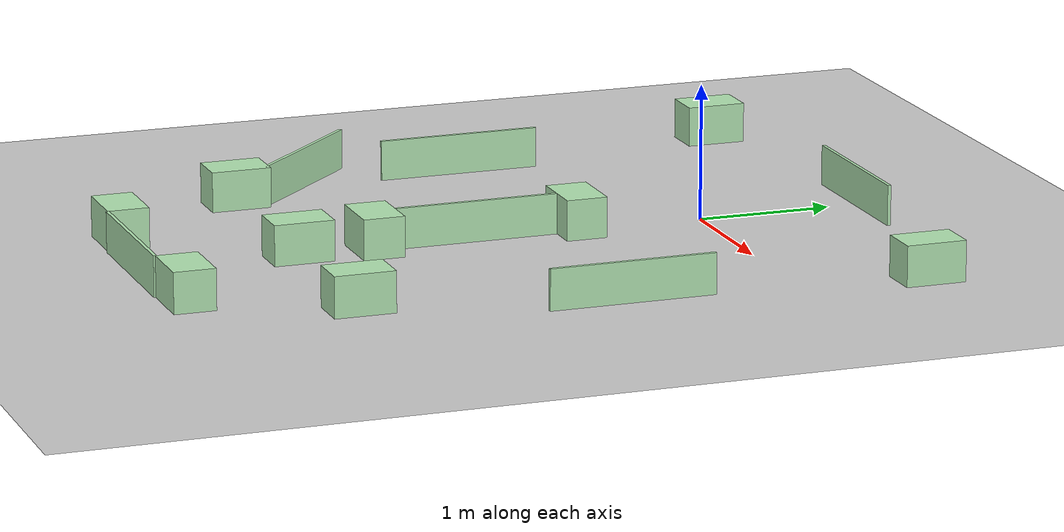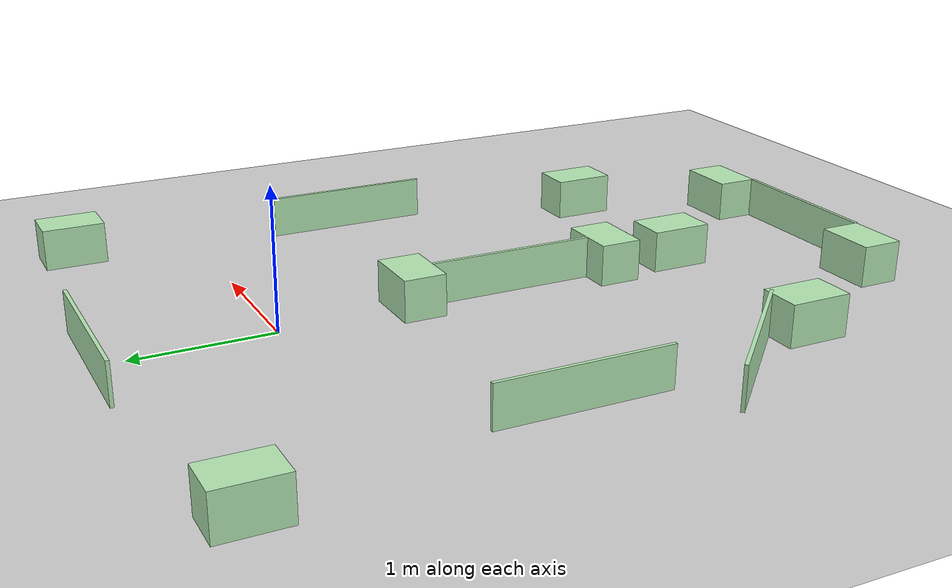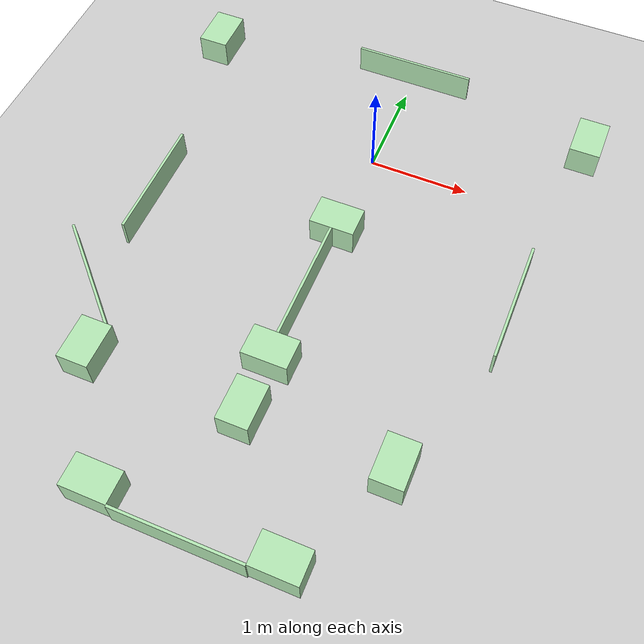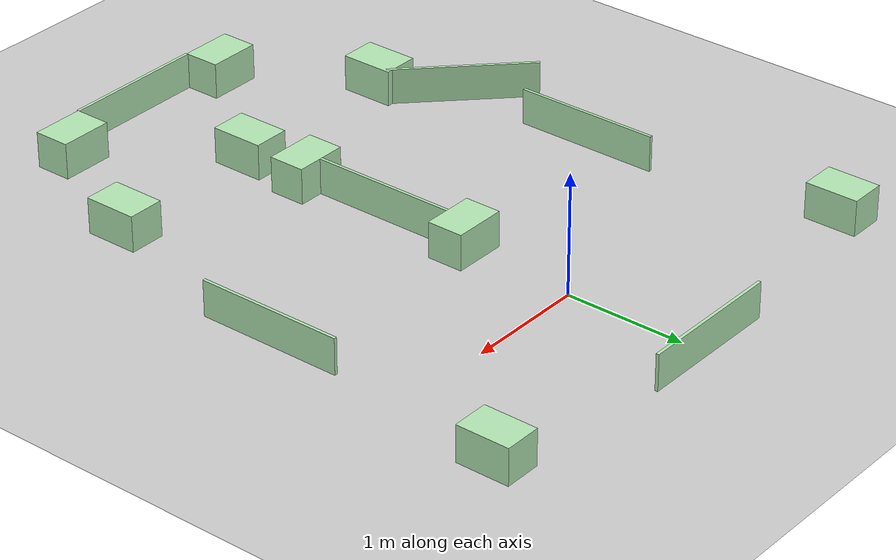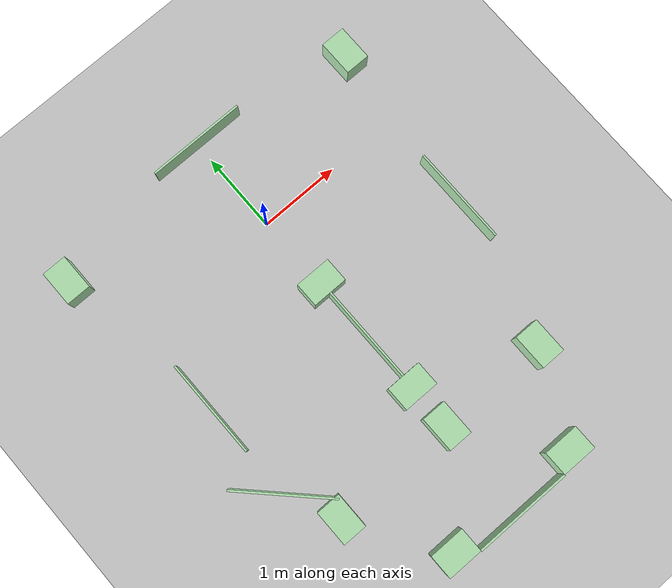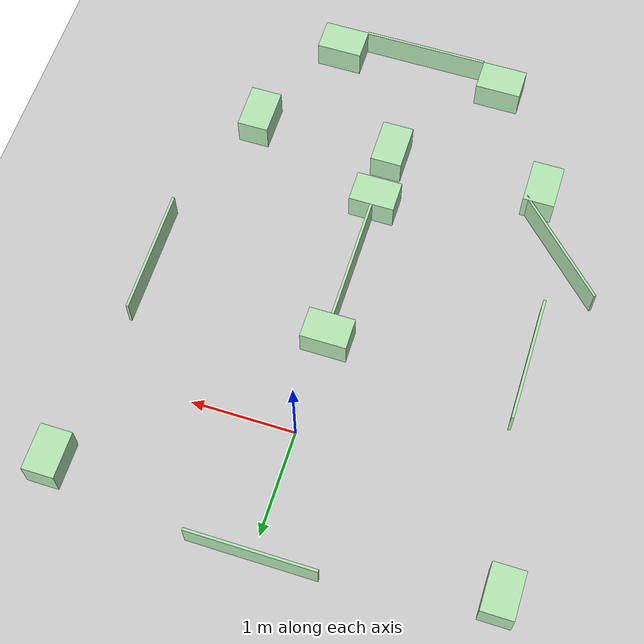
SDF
<?xml version="1.0" ?>
<sdf version="1.4">
  <world name="default">

    <gui fullscreen='0'>
      <camera name='user_camera'>
        <pose frame=''>-12.2963 -0.596448 6.620387 0.000001 0.484000 -0.128791</pose>
        <view_controller>orbit</view_controller>
        <projection_type>perspective</projection_type>
      </camera>
    </gui>

    <scene>
      <ambient>0.5 0.5 0.5 1</ambient>
      <background>0.5 0.5 0.5 1</background>
      <shadows>false</shadows>
    </scene>

    <physics type="ode">
      <gravity>0 0 -9.81</gravity>
      <ode>
        <solver>
          <type>quick</type>
          <iters>50</iters>
          <sor>1.3</sor>
        </solver>
        <constraints>
          <cfm>0.0</cfm>
          <erp>0.2</erp>
          <contact_max_correcting_vel>100.0</contact_max_correcting_vel>
          <contact_surface_layer>0.001</contact_surface_layer>
        </constraints>
      </ode>
      <real_time_update_rate>1000</real_time_update_rate>
      <max_step_size>0.001</max_step_size>
    </physics>

    <include>
      <uri>model://ground_plane</uri>
    </include>

    <include>
      <uri>model://sun</uri>
    </include>

<!--______________________________gazebo world______________________________ -->
    <model name="wall_1">
      <static>true</static>
      <link name="wall_1_link">
        <pose> 0.0 -4.2672  0.15 0 0 1.57079632679</pose>
        <collision name="wall_1_collision">
          <geometry>
            <box>
              <size>0.0254 1.2192 0.3</size>
            </box>
          </geometry>
        </collision>
        <visual name="wall_1_visual">
          <geometry>
            <box>
              <size>0.0254 1.2192 0.3</size>
            </box>
          </geometry>
          <material>
             <ambient>0.7 0.9 0.7 1.0</ambient>
             <diffuse>0.7 0.9 0.7 1.0</diffuse>
             <specular>0.1 0.1 0.1 1</specular>
             <emissive>0 0 0 0</emissive>
           </material>
        </visual>
      </link>
    </model>

    <model name="wall_2">
      <static>true</static>
      <link name="wall_2_link">
        <pose> 0.0 -1.7192  0.15 0 0 0.0</pose>
        <collision name="wall_2_collision">
          <geometry>
            <box>
              <size>0.0254 1.2192 0.3</size>
            </box>
          </geometry>
        </collision>
        <visual name="wall_2_visual">
          <geometry>
            <box>
              <size>0.0254 1.2192 0.3</size>
            </box>
          </geometry>
          <material>
             <ambient>0.7 0.9 0.7 1.0</ambient>
             <diffuse>0.7 0.9 0.7 1.0</diffuse>
             <specular>0.1 0.1 0.1 1</specular>
             <emissive>0 0 0 0</emissive>
           </material>
        </visual>
      </link>
    </model>

    <model name="wall_3">
      <static>true</static>
      <link name="wall_3_link">
        <pose> 0.0 1.2192  0.15 0 0 1.57079632679</pose>
        <collision name="wall_3_collision">
          <geometry>
            <box>
              <size>0.0254 1.2192 0.3</size>
            </box>
          </geometry>
        </collision>
        <visual name="wall_3_visual">
          <geometry>
            <box>
              <size>0.0254 1.2192 0.3</size>
            </box>
          </geometry>
          <material>
             <ambient>0.7 0.9 0.7 1.0</ambient>
             <diffuse>0.7 0.9 0.7 1.0</diffuse>
             <specular>0.1 0.1 0.1 1</specular>
             <emissive>0 0 0 0</emissive>
           </material>
        </visual>
      </link>
    </model>

    <model name="wall_4">
      <static>true</static>
      <link name="wall_4_link">
        <pose> 1.8288 -1.2192  0.15 0 0 0.0</pose>
        <collision name="wall_4_collision">
          <geometry>
            <box>
              <size>0.0254 1.2192 0.3</size>
            </box>
          </geometry>
        </collision>
        <visual name="wall_4_visual">
          <geometry>
            <box>
              <size>0.0254 1.2192 0.3</size>
            </box>
          </geometry>
          <material>
             <ambient>0.7 0.9 0.7 1.0</ambient>
             <diffuse>0.7 0.9 0.7 1.0</diffuse>
             <specular>0.1 0.1 0.1 1</specular>
             <emissive>0 0 0 0</emissive>
           </material>
        </visual>
      </link>
    </model>

    <model name="wall_5">
      <static>true</static>
      <link name="wall_5_link">
        <pose> -1.8288 -1.2192  0.15 0 0 0.0</pose>
        <collision name="wall_5_collision">
          <geometry>
            <box>
              <size>0.0254 1.2192 0.3</size>
            </box>
          </geometry>
        </collision>
        <visual name="wall_5_visual">
          <geometry>
            <box>
              <size>0.0254 1.2192 0.3</size>
            </box>
          </geometry>
          <material>
             <ambient>0.7 0.9 0.7 1.0</ambient>
             <diffuse>0.7 0.9 0.7 1.0</diffuse>
             <specular>0.1 0.1 0.1 1</specular>
             <emissive>0 0 0 0</emissive>
           </material>
        </visual>
      </link>
    </model>

    <model name="wall_6">
      <static>true</static>
      <link name="wall_6_link">
        <pose> -1.8288 -2.4384  0.15 0 0 0.785398163397</pose>
        <collision name="wall_6_collision">
          <geometry>
            <box>
              <size>0.0254 1.2192 0.3</size>
            </box>
          </geometry>
        </collision>
        <visual name="wall_6_visual">
          <geometry>
            <box>
              <size>0.0254 1.2192 0.3</size>
            </box>
          </geometry>
          <material>
             <ambient>0.7 0.9 0.7 1.0</ambient>
             <diffuse>0.7 0.9 0.7 1.0</diffuse>
             <specular>0.1 0.1 0.1 1</specular>
             <emissive>0 0 0 0</emissive>
           </material>
        </visual>
      </link>
    </model>

    <model name="box_7">
      <static>true</static>
      <link name="box_7_link">
        <pose> 0.0 -0.9572  0.15 0 0 1.57079632679</pose>
        <collision name="box_7_collision">
          <geometry>
            <box>
              <size>0.3048 0.4445 0.3</size>
            </box>
          </geometry>
        </collision>
        <visual name="box_7_visual">
          <geometry>
            <box>
              <size>0.3048 0.4445 0.3</size>
            </box>
          </geometry>
          <material>
             <ambient>0.7 0.9 0.7 1.0</ambient>
             <diffuse>0.7 0.9 0.7 1.0</diffuse>
             <specular>0.1 0.1 0.1 1</specular>
             <emissive>0 0 0 0</emissive>
           </material>
        </visual>
      </link>
    </model>

    <model name="box_8">
      <static>true</static>
      <link name="box_8_link">
        <pose> 0.0 -2.4812  0.15 0 0 1.57079632679</pose>
        <collision name="box_8_collision">
          <geometry>
            <box>
              <size>0.3048 0.4445 0.3</size>
            </box>
          </geometry>
        </collision>
        <visual name="box_8_visual">
          <geometry>
            <box>
              <size>0.3048 0.4445 0.3</size>
            </box>
          </geometry>
          <material>
             <ambient>0.7 0.9 0.7 1.0</ambient>
             <diffuse>0.7 0.9 0.7 1.0</diffuse>
             <specular>0.1 0.1 0.1 1</specular>
             <emissive>0 0 0 0</emissive>
           </material>
        </visual>
      </link>
    </model>

    <model name="box_9">
      <static>true</static>
      <link name="box_9_link">
        <pose> 0.83185 -4.1148  0.15 0 0 1.57079632679</pose>
        <collision name="box_9_collision">
          <geometry>
            <box>
              <size>0.3048 0.4445 0.3</size>
            </box>
          </geometry>
        </collision>
        <visual name="box_9_visual">
          <geometry>
            <box>
              <size>0.3048 0.4445 0.3</size>
            </box>
          </geometry>
          <material>
             <ambient>0.7 0.9 0.7 1.0</ambient>
             <diffuse>0.7 0.9 0.7 1.0</diffuse>
             <specular>0.1 0.1 0.1 1</specular>
             <emissive>0 0 0 0</emissive>
           </material>
        </visual>
      </link>
    </model>

    <model name="box_10">
      <static>true</static>
      <link name="box_10_link">
        <pose> -0.83185 -4.1148  0.15 0 0 1.57079632679</pose>
        <collision name="box_10_collision">
          <geometry>
            <box>
              <size>0.3048 0.4445 0.3</size>
            </box>
          </geometry>
        </collision>
        <visual name="box_10_visual">
          <geometry>
            <box>
              <size>0.3048 0.4445 0.3</size>
            </box>
          </geometry>
          <material>
             <ambient>0.7 0.9 0.7 1.0</ambient>
             <diffuse>0.7 0.9 0.7 1.0</diffuse>
             <specular>0.1 0.1 0.1 1</specular>
             <emissive>0 0 0 0</emissive>
           </material>
        </visual>
      </link>
    </model>

    <model name="box_11">
      <static>true</static>
      <link name="box_11_link">
        <pose> 0.0 -3.048  0.15 0 0 0.0</pose>
        <collision name="box_11_collision">
          <geometry>
            <box>
              <size>0.3048 0.4445 0.3</size>
            </box>
          </geometry>
        </collision>
        <visual name="box_11_visual">
          <geometry>
            <box>
              <size>0.3048 0.4445 0.3</size>
            </box>
          </geometry>
          <material>
             <ambient>0.7 0.9 0.7 1.0</ambient>
             <diffuse>0.7 0.9 0.7 1.0</diffuse>
             <specular>0.1 0.1 0.1 1</specular>
             <emissive>0 0 0 0</emissive>
           </material>
        </visual>
      </link>
    </model>

    <model name="box_12">
      <static>true</static>
      <link name="box_12_link">
        <pose> 1.3716 -3.048  0.15 0 0 0.0</pose>
        <collision name="box_12_collision">
          <geometry>
            <box>
              <size>0.3048 0.4445 0.3</size>
            </box>
          </geometry>
        </collision>
        <visual name="box_12_visual">
          <geometry>
            <box>
              <size>0.3048 0.4445 0.3</size>
            </box>
          </geometry>
          <material>
             <ambient>0.7 0.9 0.7 1.0</ambient>
             <diffuse>0.7 0.9 0.7 1.0</diffuse>
             <specular>0.1 0.1 0.1 1</specular>
             <emissive>0 0 0 0</emissive>
           </material>
        </visual>
      </link>
    </model>

    <model name="box_13">
      <static>true</static>
      <link name="box_13_link">
        <pose> -1.524 -3.048  0.15 0 0 0.0</pose>
        <collision name="box_13_collision">
          <geometry>
            <box>
              <size>0.3048 0.4445 0.3</size>
            </box>
          </geometry>
        </collision>
        <visual name="box_13_visual">
          <geometry>
            <box>
              <size>0.3048 0.4445 0.3</size>
            </box>
          </geometry>
          <material>
             <ambient>0.7 0.9 0.7 1.0</ambient>
             <diffuse>0.7 0.9 0.7 1.0</diffuse>
             <specular>0.1 0.1 0.1 1</specular>
             <emissive>0 0 0 0</emissive>
           </material>
        </visual>
      </link>
    </model>

    <model name="box_14">
      <static>true</static>
      <link name="box_14_link">
        <pose> 1.9812 0.9144  0.15 0 0 0.0</pose>
        <collision name="box_14_collision">
          <geometry>
            <box>
              <size>0.3048 0.4445 0.3</size>
            </box>
          </geometry>
        </collision>
        <visual name="box_14_visual">
          <geometry>
            <box>
              <size>0.3048 0.4445 0.3</size>
            </box>
          </geometry>
          <material>
             <ambient>0.7 0.9 0.7 1.0</ambient>
             <diffuse>0.7 0.9 0.7 1.0</diffuse>
             <specular>0.1 0.1 0.1 1</specular>
             <emissive>0 0 0 0</emissive>
           </material>
        </visual>
      </link>
    </model>

    <model name="box_15">
      <static>true</static>
      <link name="box_15_link">
        <pose> -2.1336 0.9144  0.15 0 0 0.0</pose>
        <collision name="box_15_collision">
          <geometry>
            <box>
              <size>0.3048 0.4445 0.3</size>
            </box>
          </geometry>
        </collision>
        <visual name="box_15_visual">
          <geometry>
            <box>
              <size>0.3048 0.4445 0.3</size>
            </box>
          </geometry>
          <material>
             <ambient>0.7 0.9 0.7 1.0</ambient>
             <diffuse>0.7 0.9 0.7 1.0</diffuse>
             <specular>0.1 0.1 0.1 1</specular>
             <emissive>0 0 0 0</emissive>
           </material>
        </visual>
      </link>
    </model>

<!--______________________________gazebo world______________________________ -->

  </world>
</sdf>
